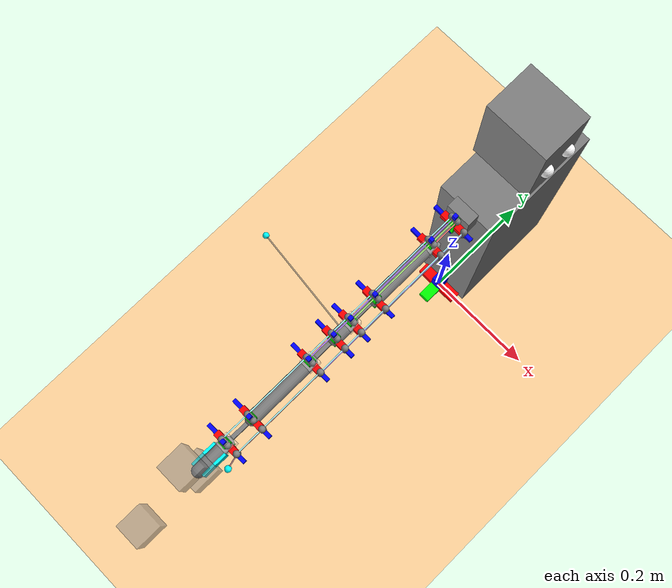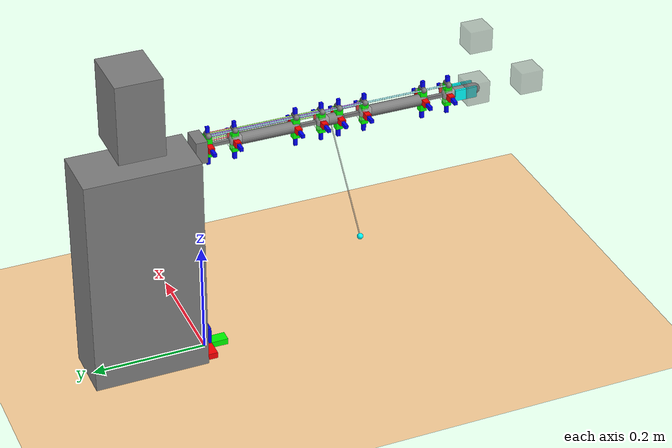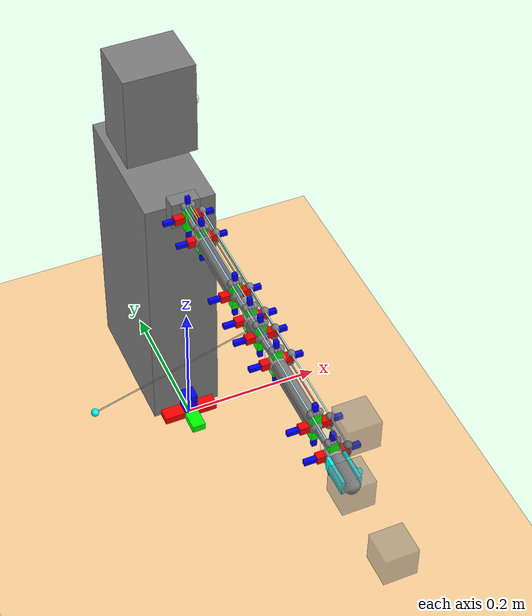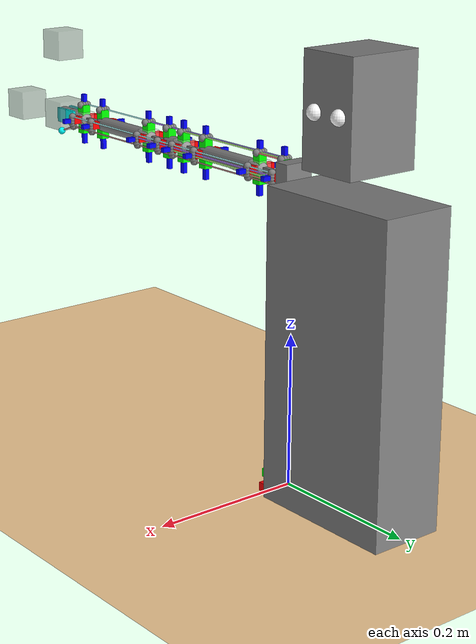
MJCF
<mujoco>

<!-- Default parameters -->
<default>
    <geom density="300"/>
</default>

<!-- gravity =0 -->
<option gravity="0 0 0"/>

<!-- Compiler and asset settings -->
<compiler angle="radian" meshdir="." autolimits="true"/>
<asset>
    <!-- STL models can be added here -->
</asset>

<worldbody>
    <!-- Lighting and environment -->
    <light directional="true" pos="-0.5 0.5 3" dir="0 0 -1" />
    <geom name="floor" pos="0 0 0" size="1 1 1" type="plane" rgba="1 0.83 0.61 0.5"/>
    <geom name="x-axis" type="box" size=".04 .01 .01" rgba="1 0 0 1" contype="0" conaffinity="0"/>
    <geom name="y-axis" type="box" size=".01 .04 .01" rgba="0 1 0 1" contype="0" conaffinity="0"/>
    <geom name="z-axis" type="box" size=".01 .01 .04" rgba="0 0 1 1" contype="0" conaffinity="0"/>
    <!-- ROBOT body -->
    <geom name="robot" type="box" size=".05 .1 .2" pos="0 0.11 .2" rgba=".5 .5 .5 1" contype="0" conaffinity="0"/>
    <!-- ROBOT head -->
    <geom name="head" type="box" size=".05 .04 .07" pos="0 0.11 .5" rgba=".5 .5 .5 1" contype="0" conaffinity="0"/>
    <!-- ROBOT left eye-->
    <geom name="eye_left" type="sphere" size=".01" pos="0.05 0.09  .5" rgba="1 1 1 1" contype="0" conaffinity="0"/>
    <!-- ROBOT right eye-->
    <geom name="eye_right" type="sphere" size=".01" pos="0.05 0.13 .5" rgba="1 1 1 1" contype="0" conaffinity="0"/>

    <!-- Add a  90 degree rotation around x and place the arm 40 cm over the table-->
    <body name="base_x" pos="0 0 .4" euler="1.5708 0 0">
        <geom name="base_x" type="box" size=".02 .02 .01" rgba=".5 .5 .5 1" contype="0" conaffinity="0"/>
        <!-- BASE with base rotation joint around Z axis-->
        <body name="base_rot" pos="0 0 0">
            <joint name="base_z_joint" type="hinge" axis="0 0 1" pos="0 0 0" damping="0.01" range="-3.14 3.14"/>

            <!-- Static base platform -->
            <body name="base" pos="0 0 0">
                <geom name="base" type="box" size=".02 .02 .01" rgba=".5 .5 .5 1" contype="0" conaffinity="0"/>

                <!-- SHOULDER JOINT -->
                <body name="shoulderbase" pos="0 0 .04">
                    <geom name="baseframex" type="box" size=".003" fromto="-.035 0 -.023 .035 0 -.023" rgba="0 0 1 1" contype="0" conaffinity="0"/>
                    <geom name="baseframey" type="box" size=".003" fromto="0 -.035 -.023 0 .035 -.023" rgba="0 0 1 1" contype="0" conaffinity="0"/>
                    <!-- Seilanker (8 Startpunkte + 1* gripper) -->
                    <site name="sh_tendon_gripper"   pos="0.0186 -0.0087 -0.023" size="0.005"/>
                    <site name="sh_tendon_x_start_1"   pos="0.0198 -0.0053 -0.023" size="0.005"/>
                    <site name="sh_tendon_x_start_2"   pos="0.0204 -0.0018 -0.023" size="0.005"/>
                    <site name="sh_tendon_x_start_3"   pos="0.0204  0.0018 -0.023" size="0.005"/>
                    <site name="sh_tendon_x_start_4"   pos="0.0198  0.0053 -0.023" size="0.005"/>
                    <site name="sh_tendon_y_start_1"   pos="0.0053  0.0198 -0.023" size="0.005"/>
                    <site name="sh_tendon_y_start_2"   pos="0.0018  0.0204 -0.023" size="0.005"/>
                    <site name="sh_tendon_y_start_3"   pos="-0.0018 0.0204 -0.023" size="0.005"/>
                    <site name="sh_tendon_y_start_4"   pos="-0.0053 0.0198 -0.023" size="0.005"/>

                    <body name="shoulder_xjoint1" pos="0 0 0">
                        <geom name="shoulder_xjoint1" type="box" size=".005" fromto="-.02 0 -.023 .02 0 -.023" rgba="1 0 0 1" contype="0" conaffinity="0"/>
                        <joint name="shoulder_xjoint1" type="hinge" axis="1 0 0" pos="0 0 -.023" damping="0.02" range="-0.7854 0.7854"/>

                        <body name="shoulder_yjoint1" pos="0 0 0">
                            <geom name="shoulder_connector" type="box" size=".003" fromto="0 0 -.023 0 0 .023" rgba=".5 .5 .5 1" contype="0" conaffinity="0"/>
                            <geom name="shoulder_yjoint1" type="box" size=".006" fromto="0 0.02 -.023 0 -0.02 -.023" rgba="0 1 0 1" contype="0" conaffinity="0"/>
                            <joint name="shoulder_yjoint1" type="hinge" axis="0 1 0" pos="0 0 -.023" damping="0.02" range="-0.7854 0.7854"/>

                            <geom name="shoulder_yjoint2" type="box" size=".006" fromto="0 0.02 .023 0 -0.02 .023" rgba="0 1 0 1" contype="0" conaffinity="0"/>
                            <body name="shoulder_yjoint2" pos="0 0 0">
                                <joint name="shoulder_yjoint2" type="hinge" axis="0 1 0" pos="0 0 .023" damping="0.02" range="-0.7854 0.7854"/>

                                <geom name="shoulder_xjoint2" type="box" size=".005" fromto="-.02 0 .023 .02 0 .023" rgba="1 0 0 1" contype="0" conaffinity="0"/>
                                <body name="shoulder_end" pos="0 0 .023">
                                    <geom name="shoulder_box" type="box" size=".01 .01 .01" rgba="1 1 1 .3" contype="0" conaffinity="0" mass="0"/>
                                    <joint name="shoulder_xjoint2" type="hinge" axis="1 0 0" pos="0 0 0" damping="0.02" range="-0.7854 0.7854"/>
                                    <geom name="endframex" type="box" size=".003" fromto="-.035 0 0 .035 0 0" rgba="0 0 1 1" contype="0" conaffinity="0"/>
                                    <geom name="endframey" type="box" size=".003" fromto="0 -.035 0 0 .035 0" rgba="0 0 1 1" contype="0" conaffinity="0"/>
                                    <!-- Seilanker (8 Endpunkte + 1* gripper) -->
                                    <site name="sh_tendon_gripper_end"     pos="0.0186 -0.0087 0.0" size="0.005"/>
                                    <site name="sh_tendon_x_end_1"         pos="0.0198 -0.0053 0.0" size="0.005"/>
                                    <site name="sh_tendon_x_end_2"         pos="0.0204 -0.0018 0.0" size="0.005"/>
                                    <site name="sh_tendon_x_end_3"         pos="0.0204  0.0018 0.0" size="0.005"/>
                                    <site name="sh_tendon_x_end_4"         pos="0.0198  0.0053 0.0" size="0.005"/>
                                    <site name="sh_tendon_y_end_1"         pos="0.0053  0.0198 0.0" size="0.005"/>
                                    <site name="sh_tendon_y_end_2"         pos="0.0018  0.0204 0.0" size="0.005"/>
                                    <site name="sh_tendon_y_end_3"         pos="-0.0018 0.0204 0.0" size="0.005"/>
                                    <site name="sh_tendon_y_end_4"         pos="-0.0053 0.0198 0.0" size="0.005"/>

                                    <!-- Connector between shoulder and elbow -->
                                    <geom name="link_shoulder_elbow1" type="capsule" fromto="0 0 0 0 0 0.107" size="0.01" rgba="0.5 0.5 0.5 1" contype="0" conaffinity="0"/>

                                    <!-- ELBOW JOINT 1 -->
                                    <body name="elbow1base" pos="0 0 0.13">
                                        <geom name="elbow1framex" type="box" size=".003" fromto="-.035 0 -.023 .035 0 -.023" rgba="0 0 1 1" contype="0" conaffinity="0"/>
                                        <geom name="elbow1framey" type="box" size=".003" fromto="0 -.035 -.023 0 .035 -.023" rgba="0 0 1 1" contype="0" conaffinity="0"/>
                                        <!-- Seilanker el1 (8 Startpunkte + 1* gripper) -->
                                        <site name="el1_tendon_gripper"     pos="0.0186 -0.0087 -0.023" size="0.005"/>
                                        <site name="el1_tendon_x_start_1"   pos="0.0198 -0.0053 -0.023" size="0.005"/>
                                        <site name="el1_tendon_x_start_2"   pos="0.0204 -0.0018 -0.023" size="0.005"/>
                                        <site name="el1_tendon_x_start_3"   pos="0.0204  0.0018 -0.023" size="0.005"/>
                                        <site name="el1_tendon_x_start_4"   pos="0.0198  0.0053 -0.023" size="0.005"/>
                                        <site name="el1_tendon_y_start_1"   pos="0.0053  0.0198 -0.023" size="0.005"/>
                                        <site name="el1_tendon_y_start_2"   pos="0.0018  0.0204 -0.023" size="0.005"/>
                                        <site name="el1_tendon_y_start_3"   pos="-0.0018 0.0204 -0.023" size="0.005"/>
                                        <site name="el1_tendon_y_start_4"   pos="-0.0053 0.0198 -0.023" size="0.005"/>

                                        <body name="elbow1_xjoint1" pos="0 0 0">
                                            <geom name="elbow1_xjoint1" type="box" size=".005" fromto="-.02 0 -.023 .02 0 -.023" rgba="1 0 0 1" contype="0" conaffinity="0"/>
                                            <joint name="elbow1_xjoint1" type="hinge" axis="1 0 0" pos="0 0 -.023" damping="0.02" range="-0.7854 0.7854" />
                                            <body name="elbow1_yjoint1" pos="0 0 0">
                                                <geom name="elbow1_connector" type="box" size=".003" fromto="0 0 -.023 0 0 .023" rgba=".5 .5 .5 1" contype="0" conaffinity="0"/>
                                                <geom name="elbow1_yjoint1" type="box" size=".006" fromto="0 0.02 -.023 0 -0.02 -.023" rgba="0 1 0 1" contype="0" conaffinity="0"/>
                                                <joint name="elbow1_yjoint1" type="hinge" axis="0 1 0" pos="0 0 -.023" damping="0.02" range="-0.7854 0.7854"/>
                                                <geom name="elbow1_yjoint2" type="box" size=".006" fromto="0 0.02 .023 0 -0.02 .023" rgba="0 1 0 1" contype="0" conaffinity="0"/>
                                                <body name="elbow1_yjoint2" pos="0 0 0">
                                                    <joint name="elbow1_yjoint2" type="hinge" axis="0 1 0" pos="0 0 .023" damping="0.02" range="-0.7854 0.7854"/>
                                                    <geom name="elbow1_xjoint2" type="box" size=".005" fromto="-.02 0 .023 .02 0 .023" rgba="1 0 0 1" contype="0" conaffinity="0"/>
                                                    <body name="elbow1_end" pos="0 0 .023">
                                                        <geom name="elbow1_box" type="box" size=".01 .01 .01" rgba="1 1 1 .3" contype="0" conaffinity="0" mass="0"/>
                                                        <joint name="elbow1_xjoint2" type="hinge" axis="1 0 0" pos="0 0 0" damping="0.02" range="-0.7854 0.7854"/>
                                                        <geom name="elbow1framex_end" type="box" size=".003" fromto="-.035 0 0 .035 0 0" rgba="0 0 1 1" contype="0" conaffinity="0"/>
                                                        <geom name="elbow1framey_end" type="box" size=".003" fromto="0 -.035 0 0 .035 0" rgba="0 0 1 1" contype="0" conaffinity="0"/>
                                                        <!-- Seilanker el1 (8 Endpunkte + 1* gripper) -->
                                                        <site name="el1_tendon_gripper_end"     pos="0.0186 -0.0087 0.0" size="0.005"/>
                                                        <site name="el1_tendon_x_end_1"         pos="0.0198 -0.0053 0.0" size="0.005"/>
                                                        <site name="el1_tendon_x_end_2"         pos="0.0204 -0.0018 0.0" size="0.005"/>
                                                        <site name="el1_tendon_x_end_3"         pos="0.0204  0.0018 0.0" size="0.005"/>
                                                        <site name="el1_tendon_x_end_4"         pos="0.0198  0.0053 0.0" size="0.005"/>
                                                        <site name="el1_tendon_y_end_1"         pos="0.0053  0.0198 0.0" size="0.005"/>
                                                        <site name="el1_tendon_y_end_2"         pos="0.0018  0.0204 0.0" size="0.005"/>
                                                        <site name="el1_tendon_y_end_3"         pos="-0.0018 0.0204 0.0" size="0.005"/>
                                                        <site name="el1_tendon_y_end_4"         pos="-0.0053 0.0198 0.0" size="0.005"/>

                                                        <!--Connector between elbow1 and elbow2-->
                                                        <geom name="link_elbow1_elbow2" type="capsule" fromto="0 0 0 0 0 0.031" size="0.01" rgba="0.5 0.5 0.5 1" contype="0" conaffinity="0"/>
                                                        <site  name="elbow_site" pos="0 0 0.0155" size="0.01" rgba="0 1 1 1"/>
                                                        <!-- ELBOW JOINT 2 -->
                                                        <body name="elbow2base" pos="0 0 0.054">
                                                            <geom name="elbow2framex" type="box" size=".003" fromto="-.035 0 -.023 .035 0 -.023" rgba="0 0 1 1" contype="0" conaffinity="0"/>
                                                            <geom name="elbow2framey" type="box" size=".003" fromto="0 -.035 -.023 0 .035 -.023" rgba="0 0 1 1" contype="0" conaffinity="0"/>
                                                            <!-- Seilanker el2 (8 Startpunkte + 1* gripper) -->
                                                            <site name="el2_tendon_gripper"     pos="0.0186 -0.0087 -0.023" size="0.005"/>
                                                            <site name="el2_tendon_x_start_1"   pos="0.0198 -0.0053 -0.023" size="0.005"/>
                                                            <site name="el2_tendon_x_start_2"   pos="0.0204 -0.0018 -0.023" size="0.005"/>
                                                            <site name="el2_tendon_x_start_3"   pos="0.0204  0.0018 -0.023" size="0.005"/>
                                                            <site name="el2_tendon_x_start_4"   pos="0.0198  0.0053 -0.023" size="0.005"/>
                                                            <site name="el2_tendon_y_start_1"   pos="0.0053  0.0198 -0.023" size="0.005"/>
                                                            <site name="el2_tendon_y_start_2"   pos="0.0018  0.0204 -0.023" size="0.005"/>
                                                            <site name="el2_tendon_y_start_3"   pos="-0.0018 0.0204 -0.023" size="0.005"/>
                                                            <site name="el2_tendon_y_start_4"   pos="-0.0053 0.0198 -0.023" size="0.005"/>

                                                            <body name="elbow2_xjoint1" pos="0 0 0">
                                                                <geom name="elbow2_xjoint1" type="box" size=".005" fromto="-.02 0 -.023 .02 0 -.023" rgba="1 0 0 1" contype="0" conaffinity="0"/>
                                                                <joint name="elbow2_xjoint1" type="hinge" axis="1 0 0" pos="0 0 -.023" damping="0.02" range="-0.7854 0.7854"/>
                                                                <body name="elbow2_yjoint1" pos="0 0 0">
                                                                    <geom name="elbow2_connector" type="box" size=".003" fromto="0 0 -.023 0 0 .023" rgba=".5 .5 .5 1" contype="0" conaffinity="0"/>
                                                                    <geom name="elbow2_yjoint1" type="box" size=".006" fromto="0 0.02 -.023 0 -0.02 -.023" rgba="0 1 0 1" contype="0" conaffinity="0"/>
                                                                    <joint name="elbow2_yjoint1" type="hinge" axis="0 1 0" pos="0 0 -.023" damping="0.02" range="-0.7854 0.7854"/>
                                                                    <geom name="elbow2_yjoint2" type="box" size=".006" fromto="0 0.02 .023 0 -0.02 .023" rgba="0 1 0 1" contype="0" conaffinity="0"/>
                                                                    <body name="elbow2_yjoint2" pos="0 0 0">
                                                                        <joint name="elbow2_yjoint2" type="hinge" axis="0 1 0" pos="0 0 .023" damping="0.02" range="-0.7854 0.7854"/>
                                                                        <geom name="elbow2_xjoint2" type="box" size=".005" fromto="-.02 0 .023 .02 0 .023" rgba="1 0 0 1" contype="0" conaffinity="0"/>
                                                                        <body name="elbow2_end" pos="0 0 .023">
                                                                            <geom name="elbow2_box" type="box" size=".01 .01 .01" rgba="1 1 1 .3" contype="0" conaffinity="0" mass="0"/>
                                                                            <joint name="elbow2_xjoint2" type="hinge" axis="1 0 0" pos="0 0 0" damping="0.02" range="-0.7854 0.7854"/>
                                                                            <geom name="elbow2framex_end" type="box" size=".003" fromto="-.035 0 0 .035 0 0" rgba="0 0 1 1" contype="0" conaffinity="0"/>
                                                                            <geom name="elbow2framey_end" type="box" size=".003" fromto="0 -.035 0 0 .035 0" rgba="0 0 1 1" contype="0" conaffinity="0"/>
                                                                            <!-- Seilanker el2 (8 Endpunkte + 1* gripper) -->
                                                                            <site name="el2_tendon_gripper_end"     pos="0.0186 -0.0087 0.0" size="0.005"/>
                                                                            <site name="el2_tendon_x_end_1"         pos="0.0198 -0.0053 0.0" size="0.005"/>
                                                                            <site name="el2_tendon_x_end_2"         pos="0.0204 -0.0018 0.0" size="0.005"/>
                                                                            <site name="el2_tendon_x_end_3"         pos="0.0204  0.0018 0.0" size="0.005"/>
                                                                            <site name="el2_tendon_x_end_4"         pos="0.0198  0.0053 0.0" size="0.005"/>
                                                                            <site name="el2_tendon_y_end_1"         pos="0.0053  0.0198 0.0" size="0.005"/>
                                                                            <site name="el2_tendon_y_end_2"         pos="0.0018  0.0204 0.0" size="0.005"/>
                                                                            <site name="el2_tendon_y_end_3"         pos="-0.0018 0.0204 0.0" size="0.005"/>
                                                                            <site name="el2_tendon_y_end_4"         pos="-0.0053 0.0198 0.0" size="0.005"/>

                                                                            <!--Connector between elbow2 and wrist-->
                                                                            <geom name="link_elbow2_wrist" type="capsule" fromto="0 0 0 0 0 0.107" size="0.01" rgba="0.5 0.5 0.5 1" contype="0" conaffinity="0"/>

                                                                            <!-- WRIST JOINT -->

                                                                            <body name="wristbase" pos="0 0 0.13">
                                                                                <geom name="wristframex" type="box" size=".003" fromto="-.035 0 -.023 .035 0 -.023" rgba="0 0 1 1" contype="0" conaffinity="0"/>
                                                                                <geom name="wristframey" type="box" size=".003" fromto="0 -.035 -.023 0 .035 -.023" rgba="0 0 1 1" contype="0" conaffinity="0"/>
                                                                            <!-- Seilanker wr (8 Startpunkte + 1* gripper) -->
                                                                            <site name="wr_tendon_gripper"     pos="0.0186 -0.0087 -0.023" size="0.005"/>
                                                                            <site name="wr_tendon_x_start_1"   pos="0.0198 -0.0053 -0.023" size="0.005"/>
                                                                            <site name="wr_tendon_x_start_2"   pos="0.0204 -0.0018 -0.023" size="0.005"/>
                                                                            <site name="wr_tendon_x_start_3"   pos="0.0204  0.0018 -0.023" size="0.005"/>
                                                                            <site name="wr_tendon_x_start_4"   pos="0.0198  0.0053 -0.023" size="0.005"/>
                                                                            <site name="wr_tendon_y_start_1"   pos="0.0053  0.0198 -0.023" size="0.005"/>
                                                                            <site name="wr_tendon_y_start_2"   pos="0.0018  0.0204 -0.023" size="0.005"/>
                                                                            <site name="wr_tendon_y_start_3"   pos="-0.0018 0.0204 -0.023" size="0.005"/>
                                                                            <site name="wr_tendon_y_start_4"   pos="-0.0053 0.0198 -0.023" size="0.005"/>

                                                                                <body name="wrist_xjoint1" pos="0 0 0">
                                                                                    <geom name="wrist_xjoint1" type="box" size=".005" fromto="-.02 0 -.023 .02 0 -.023" rgba="1 0 0 1" contype="0" conaffinity="0"/>
                                                                                    <joint name="wrist_xjoint1" type="hinge" axis="1 0 0" pos="0 0 -.023" damping="0.02" range="-0.7854 0.7854"/>
                                                                                    <body name="wrist_yjoint1" pos="0 0 0">
                                                                                        <geom name="wrist_connector" type="box" size=".003" fromto="0 0 -.023 0 0 .023" rgba=".5 .5 .5 1" contype="0" conaffinity="0"/>
                                                                                        <geom name="wrist_yjoint1" type="box" size=".006" fromto="0 0.02 -.023 0 -0.02 -.023" rgba="0 1 0 1" contype="0" conaffinity="0"/>
                                                                                        <joint name="wrist_yjoint1" type="hinge" axis="0 1 0" pos="0 0 -.023" damping="0.02" range="-0.7854 0.7854"/>
                                                                                        <geom name="wrist_yjoint2" type="box" size=".006" fromto="0 0.02 .023 0 -0.02 .023" rgba="0 1 0 1" contype="0" conaffinity="0"/>
                                                                                        <body name="wrist_yjoint2" pos="0 0 0">
                                                                                            <joint name="wrist_yjoint2" type="hinge" axis="0 1 0" pos="0 0 .023" damping="0.02" range="-0.7854 0.7854"/>
                                                                                            <geom name="wrist_xjoint2" type="box" size=".005" fromto="-.02 0 .023 .02 0 .023" rgba="1 0 0 1" contype="0" conaffinity="0"/>
                                                                                            <body name="wrist_end" pos="0 0 .023">
                                                                                                <geom name="wrist_box" type="box" size=".01 .01 .01" rgba="1 1 1 .3" contype="0" conaffinity="0" mass="0"/>
                                                                                                <joint name="wrist_xjoint2" type="hinge" axis="1 0 0" pos="0 0 0" damping="0.02" range="-0.7854 0.7854"/>
                                                                                                <geom name="wristframex_end" type="box" size=".003" fromto="-.035 0 0 .035 0 0" rgba="0 0 1 1" contype="0" conaffinity="0"/>
                                                                                                <geom name="wristframey_end" type="box" size=".003" fromto="0 -.035 0 0 .035 0" rgba="0 0 1 1" contype="0" conaffinity="0"/>
                                                                                                <!-- Seilanker wr (8 Endpunkte + 1* gripper) -->
                                                                                                <site name="wr_tendon_gripper_end"     pos="0.0186 -0.0087 0.0" size="0.005"/>
                                                                                                <site name="wr_tendon_x_end_1"         pos="0.0198 -0.0053 0.0" size="0.005"/>
                                                                                                <site name="wr_tendon_x_end_2"         pos="0.0204 -0.0018 0.0" size="0.005"/>
                                                                                                <site name="wr_tendon_x_end_3"         pos="0.0204  0.0018 0.0" size="0.005"/>
                                                                                                <site name="wr_tendon_x_end_4"         pos="0.0198  0.0053 0.0" size="0.005"/>
                                                                                                <site name="wr_tendon_y_end_1"         pos="0.0053  0.0198 0.0" size="0.005"/>
                                                                                                <site name="wr_tendon_y_end_2"         pos="0.0018  0.0204 0.0" size="0.005"/>
                                                                                                <site name="wr_tendon_y_end_3"         pos="-0.0018 0.0204 0.0" size="0.005"/>
                                                                                                <site name="wr_tendon_y_end_4"         pos="-0.0053 0.0198 0.0" size="0.005"/>

                                                                                                <!--Connector between wrist and hand-->
                                                                                                <geom name="link_wrist_hand" type="capsule" fromto="0 0 0 0 0 0.05" size="0.01" rgba="0.5 0.5 0.5 1" contype="0" conaffinity="0"/>
                                                                                                <geom name="gripperfix" type="box" size=".002 .01 .02" pos = "-.01 0 .03" rgba="0 1 1 1" contype="0" conaffinity="0" />
                                                                                                <!--gripper-->
                                                                                                <body name="gripper" pos="0 0 0.0">
                                                                                                    <joint name="gripper" type="hinge" axis="0 1 0" pos="0 0 0.024" damping="0.02" range="-0.7854 0.7854"/>
                                                                                                    <geom name="gripper" type="box" size=".002 .01 .02" pos = ".01 0 .03" rgba="0 1 1 1" contype="0" conaffinity="0"  />
                                                                                                    <site name="gripper_site" pos="0.023 -0.018 0.023" size="0.005" rgba="0 1 1 1"/>
                                                                                                </body>

                                                                                                <!-- HAND EEF Site-->
                                                                                                <body name="handbase" pos="0 0 0.05">
                                                                                                    <body name="eef_body1" pos="0 0 0">
                                                                                                        <geom name="eef_geom1" type="box" size=".01 .01 .01" rgba=".5 .5 .5 .5" contype="0" conaffinity="0"/>
                                                                                                    </body>
                                                                                                    <body name="eef_body2" pos="0 0.1 0 ">
                                                                                                        <geom name="eef_geom2" type="box" size=".01 .01 .01" rgba=".5 .5 .5 .5" contype="0" conaffinity="0"/>
                                                                                                    </body>
                                                                                                    <body name="eef_body3" pos="0 0 0.1 ">
                                                                                                        <geom name="eef_geom3" type="box" size=".01 .01 .01" rgba=".5 .5 .5 .5" contype="0" conaffinity="0"/>
                                                                                                    </body>
                                                                                                </body>
                                                                                            </body>
                                                                                        </body>
                                                                                    </body>
                                                                                </body>
                                                                            </body>
                                                                        </body>
                                                                    </body>
                                                                </body>
                                                            </body>
                                                        </body>
                                                    </body>
                                                </body>
                                            </body>
                                        </body>
                                    </body>
                                </body>
                            </body>
                        </body>
                    </body>
                </body>
            </body>
        </body>

    </body><!-- Elbow Target body for spring-damper inverse kinematics -->
    <site  name="elbow_target" pos="-.2 -0.2 0.3" size="0.005" rgba="0 1 1 1"/>

    <!-- Target body for spring-damper inverse kinematics -->
    <body name="target_body"  pos="0 -0.496 0.4">
        <joint name="target_x" type="slide" axis="1 0 0" pos="0 0 0" damping="2" />
        <joint name="target_y" type="slide" axis="0 1 0" pos="0 0 0" damping="2" />
        <joint name="target_z" type="slide" axis="0 0 1" pos="0 0 0" damping="2" />
        <joint name="target_roll" type="hinge" axis="1 0 0" pos="0 0 0" damping="0.2" range="-3.14 3.14"/>
        <joint name="target_pitch" type="hinge" axis="0 1 0" pos="0 0 0" damping="0.2" range="-3.14 3.14"/>
        <joint name="target_yaw" type="hinge" axis="0 0 1" pos="0 0 0" damping="0.2" range="-3.14 3.14"/>
        <body name="target_body1"  pos="0 0 0">
            <geom name="target_geom1" type="box" size=".02 .02 .02" rgba=".5 .5 .5 .5" contype="0" conaffinity="0"/>
        </body>
        <body name="target_body2"  pos="0 0 0.1">
            <geom name="target_geom2" type="box" size=".02 .02 .02" rgba=".5 .5 .5 .5" contype="0" conaffinity="0"/>
        </body>
        <body name="target_body3"  pos="0 -0.1 0">
            <geom name="target_geom3" type="box" size=".02 .02 .02" rgba=".5 .5 .5 .5" contype="0" conaffinity="0"/>
        </body>
    </body>
</worldbody>

<equality>
    <joint joint1="shoulder_xjoint1" joint2="shoulder_xjoint2" polycoef="0 1 0 0 0" solref="0.002 .5" solimp="0.95 0.98 0.001"/>
    <joint joint1="shoulder_yjoint1" joint2="shoulder_yjoint2" polycoef="0 1 0 0 0" solref="0.002 .5" solimp="0.95 0.98 0.001"/>
    <joint joint1="elbow1_xjoint1" joint2="elbow1_xjoint2" polycoef="0 1 0 0 0" solref="0.002 .5" solimp="0.95 0.98 0.001"/>
    <joint joint1="elbow1_yjoint1" joint2="elbow1_yjoint2" polycoef="0 1 0 0 0" solref="0.002 .5" solimp="0.95 0.98 0.001"/>
    <joint joint1="elbow2_xjoint1" joint2="elbow2_xjoint2" polycoef="0 1 0 0 0" solref="0.002 .5" solimp="0.95 0.98 0.001"/>
    <joint joint1="elbow2_yjoint1" joint2="elbow2_yjoint2" polycoef="0 1 0 0 0" solref="0.002 .5" solimp="0.95 0.98 0.001"/>
    <joint joint1="wrist_xjoint1" joint2="wrist_xjoint2" polycoef="0 1 0 0 0" solref="0.002 .5" solimp="0.95 0.98 0.001"/>
    <joint joint1="wrist_yjoint1" joint2="wrist_yjoint2" polycoef="0 1 0 0 0" solref="0.002 .5" solimp="0.95 0.98 0.001"/>

    <!-- some coupling of elbow 1 and elbow 2-->
    <joint joint1="elbow1_xjoint2" joint2="elbow2_xjoint1" polycoef="0 1 0 0 0" solref="0.01 1" solimp="0.95 0.98 0.001"/>
    <joint joint1="elbow1_yjoint2" joint2="elbow2_yjoint1" polycoef="0 1 0 0 0" solref="0.01 1" solimp="0.95 0.98 0.001"/>

    <!-- inverse kinematics: weld target and eef sites-->
    <weld body1="eef_body1" body2="target_body1"    solref="0.05 .5" solimp="0.95 0.99 0.001"/>
    <weld body1="eef_body2" body2="target_body2"    solref="0.05 .5" solimp="0.95 0.99 0.001"/>
    <weld body1="eef_body3" body2="target_body3"    solref="0.05 .5" solimp="0.95 0.99 0.001"/>
</equality>

<tendon>
    <spatial name="tendon_x_1" width="0.001" rgba="1 .5 .5 1">
        <site site="sh_tendon_x_start_1"/>
        <site site="sh_tendon_x_end_1"/>
    </spatial>
    <spatial name="tendon_y_1" width="0.001" rgba="1 .5 .5 1">
        <site site="sh_tendon_y_start_1"/>
        <site site="sh_tendon_y_end_1"/>
    </spatial>
    <spatial name="tendon_x_2" width="0.001" rgba=".7 1 .5 1">
        <site site="sh_tendon_x_start_2"/>
        <site site="sh_tendon_x_end_2"/>
        <site site="el1_tendon_x_start_2"/>
        <site site="el1_tendon_x_end_2"/>
    </spatial>
    <spatial name="tendon_y_2" width="0.001" rgba=".7 1 .5 1">
        <site site="sh_tendon_y_start_2"/>
        <site site="sh_tendon_y_end_2"/>
        <site site="el1_tendon_y_start_2"/>
        <site site="el1_tendon_y_end_2"/>
    </spatial>
    <spatial name="tendon_x_3" width="0.001" rgba=".7 .5 1 1">
        <site site="sh_tendon_x_start_3"/>
        <site site="sh_tendon_x_end_3"/>
        <site site="el1_tendon_x_start_3"/>
        <site site="el1_tendon_x_end_3"/>
        <site site="el2_tendon_x_start_3"/>
        <site site="el2_tendon_x_end_3"/>
    </spatial>
    <spatial name="tendon_y_3" width="0.001" rgba=".7 .5 1 1">
        <site site="sh_tendon_y_start_3"/>
        <site site="sh_tendon_y_end_3"/>
        <site site="el1_tendon_y_start_3"/>
        <site site="el1_tendon_y_end_3"/>
        <site site="el2_tendon_y_start_3"/>
        <site site="el2_tendon_y_end_3"/>
    </spatial>
    <spatial name="tendon_x_4" width="0.001" rgba=".7 1 1 1">
        <site site="sh_tendon_x_start_4"/>
        <site site="sh_tendon_x_end_4"/>
        <site site="el1_tendon_x_start_4"/>
        <site site="el1_tendon_x_end_4"/>
        <site site="el2_tendon_x_start_4"/>
        <site site="el2_tendon_x_end_4"/>
        <site site="wr_tendon_x_start_4"/>
        <site site="wr_tendon_x_end_4"/>
    </spatial>
    <spatial name="tendon_y_4" width="0.001" rgba=".7 1 1 1">
        <site site="sh_tendon_y_start_4"/>
        <site site="sh_tendon_y_end_4"/>
        <site site="el1_tendon_y_start_4"/>
        <site site="el1_tendon_y_end_4"/>
        <site site="el2_tendon_y_start_4"/>
        <site site="el2_tendon_y_end_4"/>
        <site site="wr_tendon_y_start_4"/>
        <site site="wr_tendon_y_end_4"/>
    </spatial>
    <spatial name="tendon_gripper" width="0.001" rgba=".7 .5 .5 1">
        <site site="sh_tendon_gripper"/>
        <site site="sh_tendon_gripper_end"/>
        <site site="el1_tendon_gripper"/>
        <site site="el1_tendon_gripper_end"/>
        <site site="el2_tendon_gripper"/>
        <site site="el2_tendon_gripper_end"/>
        <site site="wr_tendon_gripper"/>
        <site site="wr_tendon_gripper_end"/>
        <site site="gripper_site"/>
    </spatial>

    <!-- ik elbow tendon -->
    <spatial name="tendon_IK_elbow" width="0.001" rgba=".5 .5 .5 .5">
        <site site="elbow_site"/>
        <site site="elbow_target"/>
    </spatial>
</tendon>

<actuator>
    <!--target actuators-->
    <position name="target_x_motor" joint="target_x" ctrlrange="0 1" kp="100"/>
    <position name="target_y_motor" joint="target_y" ctrlrange="0 1" kp="100"/>
    <position name="target_z_motor" joint="target_z" ctrlrange="-.5 .5" kp="100"/>
    <position name="target_roll_motor" joint="target_roll" ctrlrange="-3.2 3.2" kp="1"/>
    <position name="target_pitch_motor" joint="target_pitch" ctrlrange="-3.2 3.2" kp="1"/>
    <position name="target_yaw_motor" joint="target_yaw" ctrlrange="-3.2 3.2" kp="1"/>
    <position name="gripper_motor" joint="gripper" ctrlrange="-3.2 3.2" kp=".1"/>

    <position name="IK_elbow_motor" tendon="tendon_IK_elbow" ctrlrange="-1 1" kp=".1"/>
</actuator>

</mujoco>
